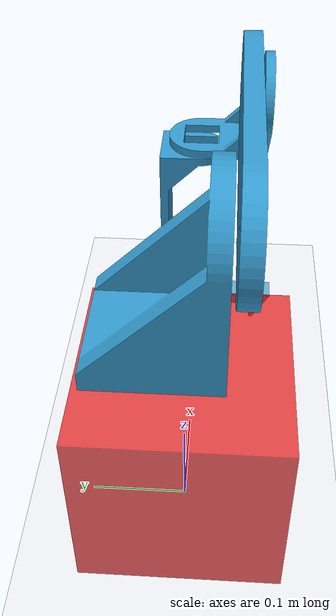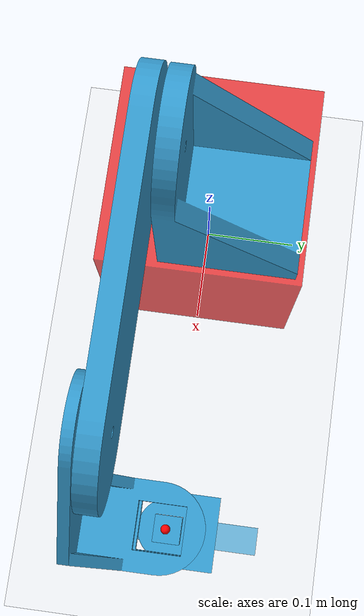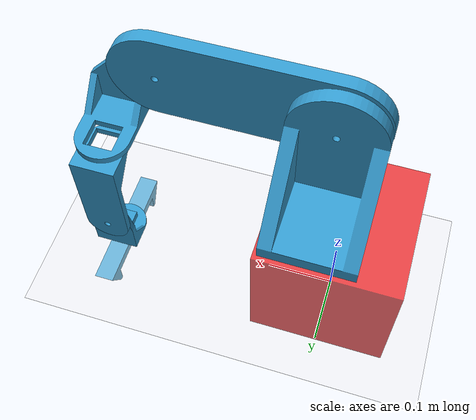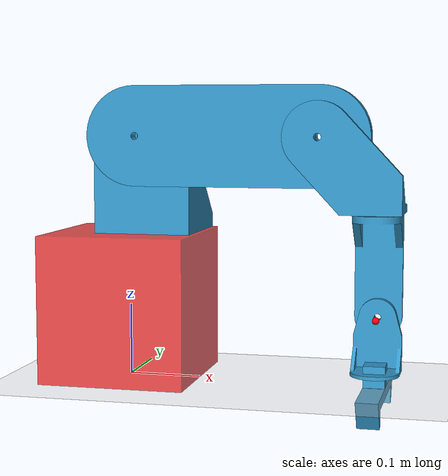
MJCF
<mujoco>
<option gravity="0 0 -9.804" integrator = "RK4" />
    <asset>
        <mesh name="link1" file="Link1.STL" scale=".001 .001 .001" />
		<mesh name="link2" file="Link2.STL" scale=".001 .001 .001" />
		<mesh name="link3" file="Link3.STL" scale=".001 .001 .001" />
		<mesh name="link4" file="Link4.STL" scale=".001 .001 .001" />
		<mesh name="link5" file="Link5.STL" scale=".001 .001 .001" />
		<mesh name="claw" file="Endeffector.STL" scale=".001 .001 .001" />

    </asset>
	<worldbody>
		<light diffuse=".5 .5 .5" pos="0 0 3" dir="0 0 -1"/>
		<geom type="plane" size="2.5 2.5 0.1" rgba=".9 .9 .9 1" pos="0 0 0"/>
		<geom type="box" size=".102 .102 .102" pos="0 0 .102" xyaxes="1 0 0 0 1 0" rgba="0.9 0 0 0.7"/>
		<body name="frame0" pos="0 0 0" xyaxes="1 0 0 0 1 0">

			<geom type="mesh" mesh="link1" rgba="0.2 0.6 0.8 1" pos=".096 -.04 .204" xyaxes="-1 0 0 0 0 1" />
			<joint name="joint0" type="hinge" axis="0 0 1" pos="0 0 0 "/>

			<body name="frame1" pos=".0275 0 .339" xyaxes="1 0 0 0 0 1">
				<joint name="joint1" type="hinge" axis="0 0 1" pos="0 0 0 "/>
				<geom type="mesh" mesh="link2" rgba="0.2 0.6 0.8 1" pos="-.0675 .0675 .045"   xyaxes="0 -1 0 1 0 0"/>
				<body name="frame2" pos=".250 0 0" xyaxes="1 0 0 0 1 0">
					<geom type="mesh" mesh="link3" rgba="0.2 0.6 0.8 1" pos="-.674 0.741 -.04"   xyaxes="0 -1 0 1 0 0"/>
					<joint name="joint2" type="hinge" axis="0 0 1" pos="0 0 0 "/>
					<body name="frame3" pos=".07 0 0" xyaxes="1 0 0 0 0 1">
						<geom type="mesh" mesh="link4" rgba="0.2 0.6 0.8 1" pos="-.034 -.05 .106"  xyaxes="0 0 1 1 0 0"/>
						<joint name="joint3" type="hinge" axis="0 0 1" pos="0 0 0 "/>
						<body name="frame4" pos="0 0 .250" xyaxes="1 0 0 0 0 -1">
							<geom type="mesh" mesh="link5" rgba="0.2 0.6 0.8 1" pos=".033 .026 .033"   xyaxes="0 -1 0 -1 0 0"/>
							<joint name="joint4" type="hinge" axis="0 0 1" pos="0 0 0 "/>
							<body name="frame5" pos="0 0 0" xyaxes="1 0 0 0 0 1">
								<site name="wrist-center" pos="0 0 0" size=".005" rgba="1 0 0 1" type="sphere"/>
								<joint name="joint5" type="hinge" axis="0 0 1" pos="0 0 0 "/>
								<geom type="mesh" mesh="claw" rgba="0.2 0.6 0.8 1" pos="-.015 -.1 .06"   xyaxes="1 0 0 0 1 0"/>
								<body name="end-effector" pos="0 0 .095" xyaxes="1 0 0 0 1 0">
									<site name="end-effector-sensor" pos="0 0 0" size=".005" rgba="1 0 0 1" type="sphere"/>
								</body>
							</body>
						</body>
					</body>
				</body>
			</body>
		</body>
	</worldbody>

	<keyframe>
	<key name="test" qpos="0 1.450 3.24 0 0 0"/><!-- theta1, theta2-->
	<key name="home" qpos="0 1.570796327 0 0 0 0"/><!-- theta1, theta2-->
	<key name="question1a" qpos="0 1.570796327 0 0 -1.570796327 0"/>
	<key name="question1bSol1" qpos="0.5236039013591659 6.003974387726819 2.595583372220704 2.5313751890127123 1.9031367647100332 2.738693633870426"/>
	<key name="question1bSol2" qpos="0.5236039013591659 1.047203432192883 0.0 2.3561672907720546 0.8726634186694457 3.5342688403079565"/>
	</keyframe>

	<!--- Copy paste from project 1-->
	<sensor>
		<velocimeter name="body-linear-vel-c" site="end-effector-sensor"/>
		<gyro name="body-ang-vel-c" site="end-effector-sensor"/><!--- body angular velcoity of the end effector wrt the world frame, this will need to be converted into a spatial velocity for use on Q4-->

	</sensor>
</mujoco>
